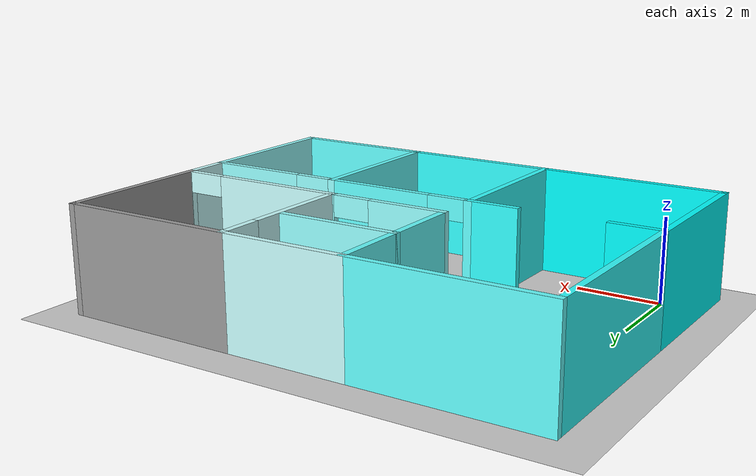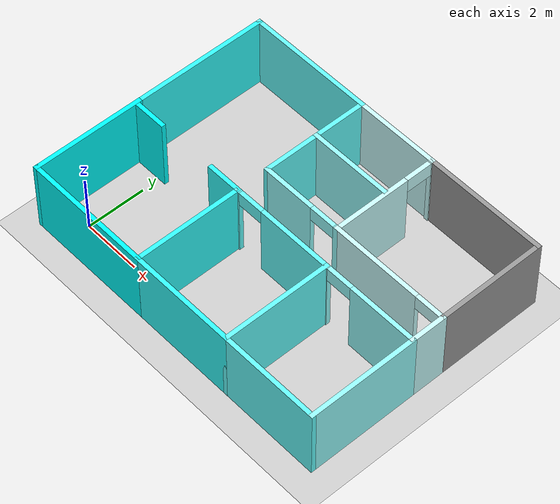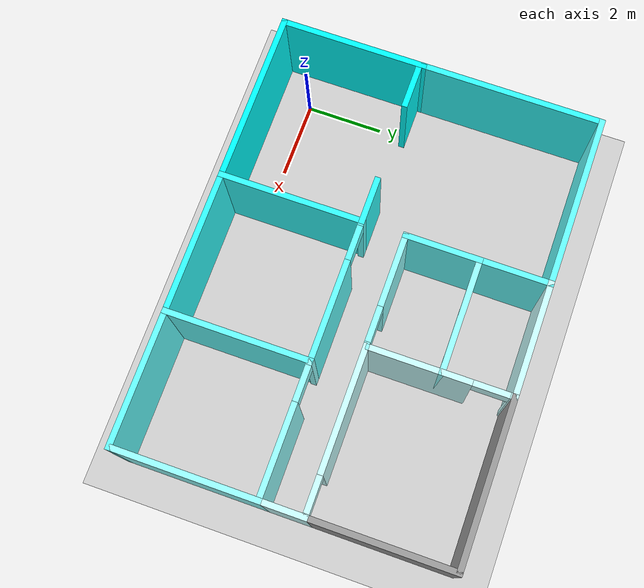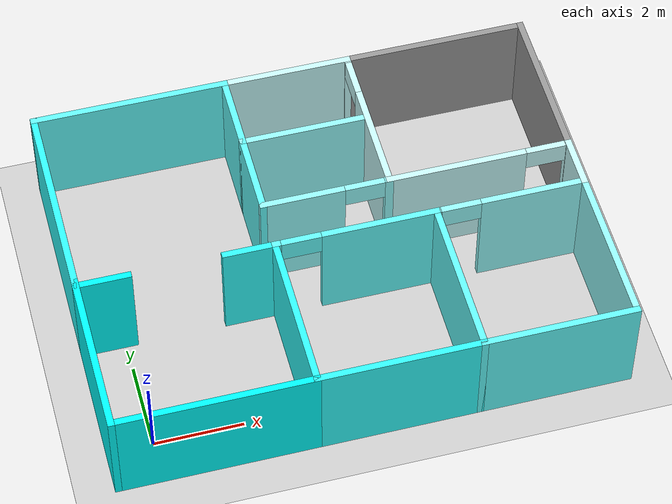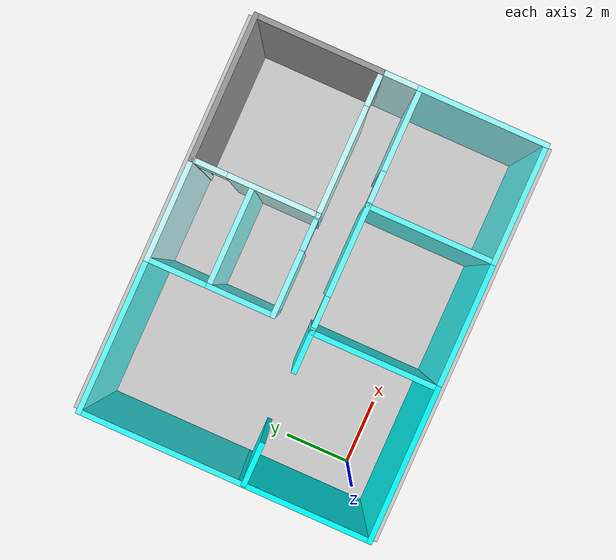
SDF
<sdf version="1.6">
 <world name="default">
  <light name="sun" type="directional">
   <pose>0 0 10 0 -0 0</pose>
   <diffuse>0.8 0.8 0.8 1</diffuse>
   <specular>0.2 0.2 0.2 1</specular>
   <attenuation>
    <range>1000</range>
    <constant>0.9</constant>
    <linear>0.01</linear>
    <quadratic>0.001</quadratic>
   </attenuation>
   <direction>-0.5 0.1 -0.9</direction>
  </light>
  <model name="ground_plane">
   <static>1</static>
   <link name="link">
    <collision name="collision">
     <geometry><plane><normal>0 0 1</normal><size>100 100</size></plane></geometry>
     <surface>
      <contact><collide_bitmask>65535</collide_bitmask></contact>
      <friction><ode><mu>100</mu><mu2>50</mu2></ode></friction>
     </surface>
    </collision>
    <visual name="visual">
     <cast_shadows>0</cast_shadows>
     <geometry><plane><normal>0 0 1</normal><size>100 100</size></plane></geometry>
     <material>
      <script><uri>file://media/materials/scripts/gazebo.material</uri><name>Gazebo/Grey</name></script>
     </material>
    </visual>
   </link>
  </model>
  <gravity>0 0 -9.8</gravity>
  <magnetic_field>6e-06 2.3e-05 -4.2e-05</magnetic_field>
  <atmosphere type="adiabatic"/>
  <physics name="default_physics" default="0" type="ode">
   <max_step_size>0.001</max_step_size>
   <real_time_factor>1</real_time_factor>
   <real_time_update_rate>1000</real_time_update_rate>
  </physics>
  <scene><ambient>0.4 0.4 0.4 1</ambient><background>0.7 0.7 0.7 1</background><shadows>1</shadows></scene>
  <audio><device>default</device></audio>
  <spherical_coordinates>
   <surface_model>EARTH_WGS84</surface_model>
   <latitude_deg>0</latitude_deg>
   <longitude_deg>0</longitude_deg>
   <elevation>0</elevation>
   <heading_deg>0</heading_deg>
  </spherical_coordinates>
  <model name="thermalWorld">
   <pose>4.69305 3.23931 0 0 -0 0</pose>
   <link name="Wall_0">
    <collision name="Wall_0_Collision">
     <geometry><box><size>4.25 0.15 2.5</size></box></geometry>
     <pose>0 0 1.25 0 -0 0</pose>
    </collision>
    <visual name="Wall_0_Visual">
     <pose>0 0 1.25 0 -0 0</pose>
     <geometry><box><size>4.25 0.15 2.5</size></box></geometry>
     <material>
      <script><uri>file://media/materials/scripts/gazebo.material</uri><name>Gazebo/Grey</name></script>
      <ambient>1 1 1 1</ambient>
     </material>
     <meta><layer>0</layer></meta>
    </visual>
    <pose>3.6 4.15 0 0 -0 0</pose>
   </link>
   <link name="Wall_1">
    <collision name="Wall_1_Collision">
     <geometry><box><size>3.75 0.15 2.5</size></box></geometry>
     <pose>0 0 1.25 0 -0 0</pose>
    </collision>
    <visual name="Wall_1_Visual">
     <pose>0 0 1.25 0 -0 0</pose>
     <geometry><box><size>3.75 0.15 2.5</size></box></geometry>
     <material>
      <script><uri>file://media/materials/scripts/gazebo.material</uri><name>Gazebo/Grey</name></script>
      <ambient>1 1 1 1</ambient>
     </material>
     <meta><layer>0</layer></meta>
    </visual>
    <pose>5.65 2.35 0 0 -0 -1.5708</pose>
   </link>
   <link name="Wall_10">
    <collision name="Wall_10_Collision">
     <geometry><box><size>3.75 0.15 2.5</size></box></geometry>
     <pose>0 0 1.25 0 -0 0</pose>
    </collision>
    <visual name="Wall_10_Visual">
     <pose>0 0 1.25 0 -0 0</pose>
     <geometry><box><size>3.75 0.15 2.5</size></box></geometry>
     <material>
      <script><uri>file://media/materials/scripts/gazebo.material</uri><name>Gazebo/Grey</name></script>
      <ambient>0.588235 1 1 1</ambient>
     </material>
     <meta><layer>0</layer></meta>
    </visual>
    <pose>5.65 -2.35 0 0 -0 -1.5708</pose>
   </link>
   <link name="Wall_11">
    <collision name="Wall_11_Collision">
     <geometry><box><size>3.5 0.15 2.5</size></box></geometry>
     <pose>0 0 1.25 0 -0 0</pose>
    </collision>
    <visual name="Wall_11_Visual">
     <pose>0 0 1.25 0 -0 0</pose>
     <geometry><box><size>3.5 0.15 2.5</size></box></geometry>
     <material>
      <script><uri>file://media/materials/scripts/gazebo.material</uri><name>Gazebo/Grey</name></script>
      <ambient>0.392157 1 1 1</ambient>
     </material>
     <meta><layer>0</layer></meta>
    </visual>
    <pose>3.975 -4.15 0 0 -0 3.14159</pose>
   </link>
   <link name="Wall_13">
    <pose>1.55 2.35 0 0 -0 -1.5708</pose>
    <visual name="Wall_13_Visual_0">
     <pose>-1.78266 0 1.25 0 -0 0</pose>
     <geometry><box><size>0.184672 0.15 2.5</size></box></geometry>
     <material>
      <script><uri>file://media/materials/scripts/gazebo.material</uri><name>Gazebo/Grey</name></script>
      <ambient>0.784314 1 1 1</ambient>
     </material>
     <meta><layer>0</layer></meta>
    </visual>
    <collision name="Wall_13_Collision_0">
     <geometry><box><size>0.184672 0.15 2.5</size></box></geometry>
     <pose>-1.78266 0 1.25 0 -0 0</pose>
    </collision>
    <visual name="Wall_13_Visual_1">
     <pose>0.542336 0 1.25 0 -0 0</pose>
     <geometry><box><size>2.66533 0.15 2.5</size></box></geometry>
     <material>
      <script><uri>file://media/materials/scripts/gazebo.material</uri><name>Gazebo/Grey</name></script>
      <ambient>0.784314 1 1 1</ambient>
     </material>
     <meta><layer>0</layer></meta>
    </visual>
    <collision name="Wall_13_Collision_1">
     <geometry><box><size>2.66533 0.15 2.5</size></box></geometry>
     <pose>0.542336 0 1.25 0 -0 0</pose>
    </collision>
    <visual name="Wall_13_Visual_2">
     <pose>-1.24033 0 2.25 0 -0 0</pose>
     <geometry><box><size>0.9 0.15 0.5</size></box></geometry>
     <material>
      <script><uri>file://media/materials/scripts/gazebo.material</uri><name>Gazebo/Grey</name></script>
      <ambient>0.784314 1 1 1</ambient>
     </material>
     <meta><layer>0</layer></meta>
    </visual>
    <collision name="Wall_13_Collision_2">
     <geometry><box><size>0.9 0.15 0.5</size></box></geometry>
     <pose>-1.24033 0 2.25 0 -0 0</pose>
    </collision>
   </link>
   <link name="Wall_14">
    <pose>3.6 0.55 0 0 -0 0</pose>
    <visual name="Wall_14_Visual_0">
     <pose>-0.529155 0 1.25 0 -0 0</pose>
     <geometry><box><size>3.19169 0.15 2.5</size></box></geometry>
     <material>
      <script><uri>file://media/materials/scripts/gazebo.material</uri><name>Gazebo/Grey</name></script>
      <ambient>0.784314 1 1 1</ambient>
     </material>
     <meta><layer>0</layer></meta>
    </visual>
    <collision name="Wall_14_Collision_0">
     <geometry><box><size>3.19169 0.15 2.5</size></box></geometry>
     <pose>-0.529155 0 1.25 0 -0 0</pose>
    </collision>
    <visual name="Wall_14_Visual_1">
     <pose>2.04584 0 1.25 0 -0 0</pose>
     <geometry><box><size>0.15831 0.15 2.5</size></box></geometry>
     <material>
      <script><uri>file://media/materials/scripts/gazebo.material</uri><name>Gazebo/Grey</name></script>
      <ambient>0.784314 1 1 1</ambient>
     </material>
     <meta><layer>0</layer></meta>
    </visual>
    <collision name="Wall_14_Collision_1">
     <geometry><box><size>0.15831 0.15 2.5</size></box></geometry>
     <pose>2.04584 0 1.25 0 -0 0</pose>
    </collision>
    <visual name="Wall_14_Visual_2">
     <pose>1.51669 0 2.25 0 -0 0</pose>
     <geometry><box><size>0.9 0.15 0.5</size></box></geometry>
     <material>
      <script><uri>file://media/materials/scripts/gazebo.material</uri><name>Gazebo/Grey</name></script>
      <ambient>0.784314 1 1 1</ambient>
     </material>
     <meta><layer>0</layer></meta>
    </visual>
    <collision name="Wall_14_Collision_2">
     <geometry><box><size>0.9 0.15 0.5</size></box></geometry>
     <pose>1.51669 0 2.25 0 -0 0</pose>
    </collision>
   </link>
   <link name="Wall_16">
    <pose>0.125 0.55 0 0 -0 3.14159</pose>
    <visual name="Wall_16_Visual_0">
     <pose>-1.4066 0 1.25 0 -0 0</pose>
     <geometry><box><size>0.18681 0.15 2.5</size></box></geometry>
     <material>
      <script><uri>file://media/materials/scripts/gazebo.material</uri><name>Gazebo/Grey</name></script>
      <ambient>0.588235 1 1 1</ambient>
     </material>
     <meta><layer>0</layer></meta>
    </visual>
    <collision name="Wall_16_Collision_0">
     <geometry><box><size>0.18681 0.15 2.5</size></box></geometry>
     <pose>-1.4066 0 1.25 0 -0 0</pose>
    </collision>
    <visual name="Wall_16_Visual_1">
     <pose>0.543405 0 1.25 0 -0 0</pose>
     <geometry><box><size>1.91319 0.15 2.5</size></box></geometry>
     <material>
      <script><uri>file://media/materials/scripts/gazebo.material</uri><name>Gazebo/Grey</name></script>
      <ambient>0.588235 1 1 1</ambient>
     </material>
     <meta><layer>0</layer></meta>
    </visual>
    <collision name="Wall_16_Collision_1">
     <geometry><box><size>1.91319 0.15 2.5</size></box></geometry>
     <pose>0.543405 0 1.25 0 -0 0</pose>
    </collision>
    <visual name="Wall_16_Visual_2">
     <pose>-0.86319 0 2.25 0 -0 0</pose>
     <geometry><box><size>0.9 0.15 0.5</size></box></geometry>
     <material>
      <script><uri>file://media/materials/scripts/gazebo.material</uri><name>Gazebo/Grey</name></script>
      <ambient>0.588235 1 1 1</ambient>
     </material>
     <meta><layer>0</layer></meta>
    </visual>
    <collision name="Wall_16_Collision_2">
     <geometry><box><size>0.9 0.15 0.5</size></box></geometry>
     <pose>-0.86319 0 2.25 0 -0 0</pose>
    </collision>
   </link>
   <link name="Wall_17">
    <collision name="Wall_17_Collision">
     <geometry><box><size>2 0.15 2.5</size></box></geometry>
     <pose>0 0 1.25 0 -0 0</pose>
    </collision>
    <visual name="Wall_17_Visual">
     <pose>0 0 1.25 0 -0 0</pose>
     <geometry><box><size>2 0.15 2.5</size></box></geometry>
     <material>
      <script><uri>file://media/materials/scripts/gazebo.material</uri><name>Gazebo/Grey</name></script>
      <ambient>0.392157 1 1 1</ambient>
     </material>
     <meta><layer>0</layer></meta>
    </visual>
    <pose>-1.3 1.475 0 0 -0 1.5708</pose>
   </link>
   <link name="Wall_18">
    <collision name="Wall_18_Collision">
     <geometry><box><size>3 0.15 2.5</size></box></geometry>
     <pose>0 0 1.25 0 -0 0</pose>
    </collision>
    <visual name="Wall_18_Visual">
     <pose>0 0 1.25 0 -0 0</pose>
     <geometry><box><size>3 0.15 2.5</size></box></geometry>
     <material>
      <script><uri>file://media/materials/scripts/gazebo.material</uri><name>Gazebo/Grey</name></script>
      <ambient>0.588235 1 1 1</ambient>
     </material>
     <meta><layer>0</layer></meta>
    </visual>
    <pose>0.125 2.4 0 0 -0 0</pose>
   </link>
   <link name="Wall_2">
    <collision name="Wall_2_Collision">
     <geometry><box><size>1.25 0.15 2.5</size></box></geometry>
     <pose>0 0 1.25 0 -0 0</pose>
    </collision>
    <visual name="Wall_2_Visual">
     <pose>0 0 1.25 0 -0 0</pose>
     <geometry><box><size>1.25 0.15 2.5</size></box></geometry>
     <material>
      <script><uri>file://media/materials/scripts/gazebo.material</uri><name>Gazebo/Grey</name></script>
      <ambient>0.784314 1 1 1</ambient>
     </material>
     <meta><layer>0</layer></meta>
    </visual>
    <pose>5.65 -0 0 0 -0 -1.5708</pose>
   </link>
   <link name="Wall_20">
    <collision name="Wall_20_Collision">
     <geometry><box><size>3 0.15 2.5</size></box></geometry>
     <pose>0 0 1.25 0 -0 0</pose>
    </collision>
    <visual name="Wall_20_Visual">
     <pose>0 0 1.25 0 -0 0</pose>
     <geometry><box><size>3 0.15 2.5</size></box></geometry>
     <material>
      <script><uri>file://media/materials/scripts/gazebo.material</uri><name>Gazebo/Grey</name></script>
      <ambient>0.784314 1 1 1</ambient>
     </material>
     <meta><layer>0</layer></meta>
    </visual>
    <pose>0.125 4.15 0 0 -0 3.14159</pose>
   </link>
   <link name="Wall_21">
    <collision name="Wall_21_Collision">
     <geometry><box><size>1.9 0.15 2.5</size></box></geometry>
     <pose>0 0 1.25 0 -0 0</pose>
    </collision>
    <visual name="Wall_21_Visual">
     <pose>0 0 1.25 0 -0 0</pose>
     <geometry><box><size>1.9 0.15 2.5</size></box></geometry>
     <material>
      <script><uri>file://media/materials/scripts/gazebo.material</uri><name>Gazebo/Grey</name></script>
      <ambient>0.392157 1 1 1</ambient>
     </material>
     <meta><layer>0</layer></meta>
    </visual>
    <pose>-1.3 3.275 0 0 -0 -1.5708</pose>
   </link>
   <link name="Wall_23">
    <collision name="Wall_23_Collision">
     <geometry><box><size>4.5 0.15 2.5</size></box></geometry>
     <pose>0 0 1.25 0 -0 0</pose>
    </collision>
    <visual name="Wall_23_Visual">
     <pose>0 0 1.25 0 -0 0</pose>
     <geometry><box><size>4.5 0.15 2.5</size></box></geometry>
     <material>
      <script><uri>file://media/materials/scripts/gazebo.material</uri><name>Gazebo/Grey</name></script>
      <ambient>0.392157 1 1 1</ambient>
     </material>
     <meta><layer>0</layer></meta>
    </visual>
    <pose>-3.475 4.15 0 0 -0 3.14159</pose>
   </link>
   <link name="Wall_28">
    <collision name="Wall_28_Collision">
     <geometry><box><size>4.5 0.15 2.5</size></box></geometry>
     <pose>0 0 1.25 0 -0 0</pose>
    </collision>
    <visual name="Wall_28_Visual">
     <pose>0 0 1.25 0 -0 0</pose>
     <geometry><box><size>4.5 0.15 2.5</size></box></geometry>
     <material>
      <script><uri>file://media/materials/scripts/gazebo.material</uri><name>Gazebo/Grey</name></script>
      <ambient>0 1 1 1</ambient>
     </material>
     <meta><layer>0</layer></meta>
    </visual>
    <pose>-3.475 -4.15 0 0 -0 3.14159</pose>
   </link>
   <link name="Wall_3">
    <pose>3.975 -0.55 0 0 -0 3.14159</pose>
    <visual name="Wall_3_Visual_0">
     <pose>-0.538095 0 1.25 0 -0 0</pose>
     <geometry><box><size>2.42381 0.15 2.5</size></box></geometry>
     <material>
      <script><uri>file://media/materials/scripts/gazebo.material</uri><name>Gazebo/Grey</name></script>
      <ambient>0.588235 1 1 1</ambient>
     </material>
     <meta><layer>0</layer></meta>
    </visual>
    <collision name="Wall_3_Collision_0">
     <geometry><box><size>2.42381 0.15 2.5</size></box></geometry>
     <pose>-0.538095 0 1.25 0 -0 0</pose>
    </collision>
    <visual name="Wall_3_Visual_1">
     <pose>1.6619 0 1.25 0 -0 0</pose>
     <geometry><box><size>0.17619 0.15 2.5</size></box></geometry>
     <material>
      <script><uri>file://media/materials/scripts/gazebo.material</uri><name>Gazebo/Grey</name></script>
      <ambient>0.588235 1 1 1</ambient>
     </material>
     <meta><layer>0</layer></meta>
    </visual>
    <collision name="Wall_3_Collision_1">
     <geometry><box><size>0.17619 0.15 2.5</size></box></geometry>
     <pose>1.6619 0 1.25 0 -0 0</pose>
    </collision>
    <visual name="Wall_3_Visual_2">
     <pose>1.12381 0 2.25 0 -0 0</pose>
     <geometry><box><size>0.9 0.15 0.5</size></box></geometry>
     <material>
      <script><uri>file://media/materials/scripts/gazebo.material</uri><name>Gazebo/Grey</name></script>
      <ambient>0.588235 1 1 1</ambient>
     </material>
     <meta><layer>0</layer></meta>
    </visual>
    <collision name="Wall_3_Collision_2">
     <geometry><box><size>0.9 0.15 0.5</size></box></geometry>
     <pose>1.12381 0 2.25 0 -0 0</pose>
    </collision>
   </link>
   <link name="Wall_32">
    <collision name="Wall_32_Collision">
     <geometry><box><size>1.25 0.15 2.5</size></box></geometry>
     <pose>0 0 1.25 0 -0 0</pose>
    </collision>
    <visual name="Wall_32_Visual">
     <pose>0 0 1.25 0 -0 0</pose>
     <geometry><box><size>1.25 0.15 2.5</size></box></geometry>
     <material>
      <script><uri>file://media/materials/scripts/gazebo.material</uri><name>Gazebo/Grey</name></script>
      <ambient>0.196078 1 1 1</ambient>
     </material>
     <meta><layer>0</layer></meta>
    </visual>
    <pose>-1.85 -0.55 0 0 -0 3.14159</pose>
   </link>
   <link name="Wall_34">
    <collision name="Wall_34_Collision">
     <geometry><box><size>1.25 0.15 2.5</size></box></geometry>
     <pose>0 0 1.25 0 -0 0</pose>
    </collision>
    <visual name="Wall_34_Visual">
     <pose>0 0 1.25 0 -0 0</pose>
     <geometry><box><size>1.25 0.15 2.5</size></box></geometry>
     <material>
      <script><uri>file://media/materials/scripts/gazebo.material</uri><name>Gazebo/Grey</name></script>
      <ambient>0 1 1 1</ambient>
     </material>
     <meta><layer>0</layer></meta>
    </visual>
    <pose>-5.06665 -0.551342 0 0 -0 0</pose>
   </link>
   <link name="Wall_36">
    <collision name="Wall_36_Collision">
     <geometry><box><size>4.75 0.15 2.5</size></box></geometry>
     <pose>0 0 1.25 0 -0 0</pose>
    </collision>
    <visual name="Wall_36_Visual">
     <pose>0 0 1.25 0 -0 0</pose>
     <geometry><box><size>4.75 0.15 2.5</size></box></geometry>
     <material>
      <script><uri>file://media/materials/scripts/gazebo.material</uri><name>Gazebo/Grey</name></script>
      <ambient>0.196078 1 1 1</ambient>
     </material>
     <meta><layer>0</layer></meta>
    </visual>
    <pose>-5.65 1.85 0 0 -0 -1.5708</pose>
   </link>
   <link name="Wall_37">
    <collision name="Wall_37_Collision">
     <geometry><box><size>3.85 0.15 2.5</size></box></geometry>
     <pose>0 0 1.25 0 -0 0</pose>
    </collision>
    <visual name="Wall_37_Visual">
     <pose>0 0 1.25 0 -0 0</pose>
     <geometry><box><size>3.85 0.15 2.5</size></box></geometry>
     <material>
      <script><uri>file://media/materials/scripts/gazebo.material</uri><name>Gazebo/Grey</name></script>
      <ambient>0 1 1 1</ambient>
     </material>
     <meta><layer>0</layer></meta>
    </visual>
    <pose>-5.65 -2.3 0 0 -0 -1.5708</pose>
   </link>
   <link name="Wall_4">
    <pose>0.5 -0.55 0 0 -0 3.14159</pose>
    <visual name="Wall_4_Visual_0">
     <pose>-0.549845 0 1.25 0 -0 0</pose>
     <geometry><box><size>2.65031 0.15 2.5</size></box></geometry>
     <material>
      <script><uri>file://media/materials/scripts/gazebo.material</uri><name>Gazebo/Grey</name></script>
      <ambient>0.392157 1 1 1</ambient>
     </material>
     <meta><layer>0</layer></meta>
    </visual>
    <collision name="Wall_4_Collision_0">
     <geometry><box><size>2.65031 0.15 2.5</size></box></geometry>
     <pose>-0.549845 0 1.25 0 -0 0</pose>
    </collision>
    <visual name="Wall_4_Visual_1">
     <pose>1.77516 0 1.25 0 -0 0</pose>
     <geometry><box><size>0.19969 0.15 2.5</size></box></geometry>
     <material>
      <script><uri>file://media/materials/scripts/gazebo.material</uri><name>Gazebo/Grey</name></script>
      <ambient>0.392157 1 1 1</ambient>
     </material>
     <meta><layer>0</layer></meta>
    </visual>
    <collision name="Wall_4_Collision_1">
     <geometry><box><size>0.19969 0.15 2.5</size></box></geometry>
     <pose>1.77516 0 1.25 0 -0 0</pose>
    </collision>
    <visual name="Wall_4_Visual_2">
     <pose>1.22531 0 2.25 0 -0 0</pose>
     <geometry><box><size>0.9 0.15 0.5</size></box></geometry>
     <material>
      <script><uri>file://media/materials/scripts/gazebo.material</uri><name>Gazebo/Grey</name></script>
      <ambient>0.392157 1 1 1</ambient>
     </material>
     <meta><layer>0</layer></meta>
    </visual>
    <collision name="Wall_4_Collision_2">
     <geometry><box><size>0.9 0.15 0.5</size></box></geometry>
     <pose>1.22531 0 2.25 0 -0 0</pose>
    </collision>
   </link>
   <link name="Wall_6">
    <collision name="Wall_6_Collision">
     <geometry><box><size>3.75 0.15 2.5</size></box></geometry>
     <pose>0 0 1.25 0 -0 0</pose>
    </collision>
    <visual name="Wall_6_Visual">
     <pose>0 0 1.25 0 -0 0</pose>
     <geometry><box><size>3.75 0.15 2.5</size></box></geometry>
     <material>
      <script><uri>file://media/materials/scripts/gazebo.material</uri><name>Gazebo/Grey</name></script>
      <ambient>0.196078 1 1 1</ambient>
     </material>
     <meta><layer>0</layer></meta>
    </visual>
    <pose>-1.3 -2.35 0 0 -0 -1.5708</pose>
   </link>
   <link name="Wall_7">
    <collision name="Wall_7_Collision">
     <geometry><box><size>3.75 0.15 2.5</size></box></geometry>
     <pose>0 0 1.25 0 -0 0</pose>
    </collision>
    <visual name="Wall_7_Visual">
     <pose>0 0 1.25 0 -0 0</pose>
     <geometry><box><size>3.75 0.15 2.5</size></box></geometry>
     <material>
      <script><uri>file://media/materials/scripts/gazebo.material</uri><name>Gazebo/Grey</name></script>
      <ambient>0.196078 1 1 1</ambient>
     </material>
     <meta><layer>0</layer></meta>
    </visual>
    <pose>0.5 -4.15 0 0 -0 0</pose>
   </link>
   <link name="Wall_8">
    <collision name="Wall_8_Collision">
     <geometry><box><size>3.75 0.15 2.5</size></box></geometry>
     <pose>0 0 1.25 0 -0 0</pose>
    </collision>
    <visual name="Wall_8_Visual">
     <pose>0 0 1.25 0 -0 0</pose>
     <geometry><box><size>3.75 0.15 2.5</size></box></geometry>
     <material>
      <script><uri>file://media/materials/scripts/gazebo.material</uri><name>Gazebo/Grey</name></script>
      <ambient>0.392157 1 1 1</ambient>
     </material>
     <meta><layer>0</layer></meta>
    </visual>
    <pose>2.3 -2.35 0 0 -0 1.5708</pose>
   </link>
   <static>1</static>
  </model>
 </world>
</sdf>
